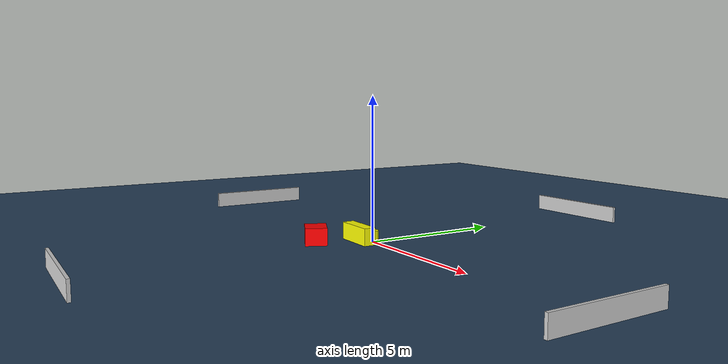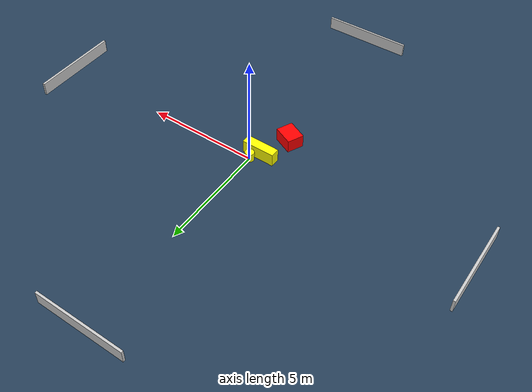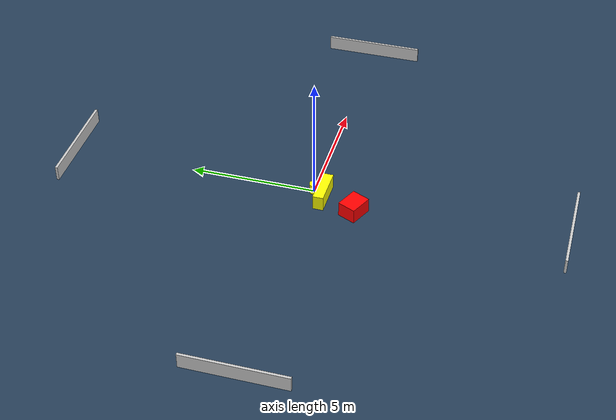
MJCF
<?xml version="1.0" ?>
<mujoco model="generated_environment">
  <option timestep="0.01" integrator="RK4" cone="elliptic"/>
  <default>
    <geom density="1"/>
  </default>
  <asset>
    <texture builtin="gradient" height="3072" name="skybox" rgb1="0.3 0.5 0.7" rgb2="0 0 0" type="skybox" width="512"/>
    <texture builtin="checker" height="300" name="groundplane" rgb1="0.2 0.3 0.4" rgb2="0.1 0.2 0.3" type="2d" width="300"/>
    <material name="groundplane" reflectance="0.2" texrepeat="5 5" texture="groundplane"/>
  </asset>
  <worldbody>
    <light dir="0 0 -1" directional="true" pos="0 0 1.5"/>
    <geom condim="3" friction="0.5 0.005 0.001" material="groundplane" name="floor" pos="0 0 0" size="0 0 0.05" type="plane"/>
    <body name="walls">
      <geom name="wall_1" condim="4" pos="-10.0 0.0 0.3" rgba="0.800000011920929 0.800000011920929 0.800000011920929 1.0" size="0.05 2.0 0.3" type="box"/>
      <geom name="wall_2" condim="4" pos="10.0 0.0 0.3" rgba="0.800000011920929 0.800000011920929 0.800000011920929 1.0" size="0.05 2.0 0.3" type="box"/>
      <geom name="wall_3" condim="4" pos="0.0 -10.0 0.3" rgba="0.800000011920929 0.800000011920929 0.800000011920929 1.0" size="2.0 0.05 0.3" type="box"/>
      <geom name="wall_4" condim="4" pos="0.0 10.0 0.3" rgba="0.800000011920929 0.800000011920929 0.800000011920929 1.0" size="2.0 0.05 0.3" type="box"/>
    </body>
    <body name="robot">
      <joint name="joint_x" type="slide" pos="0 0 0" axis="1 0 0"/>
      <joint name="joint_y" type="slide" pos="0 0 0" axis="0 1 0"/>
      <geom name="robot" type="cylinder" pos="0.0 0.0 0.2" size="0.2 0.2 0.0" mass="5.0" friction="1.0 0.005 0.0001" condim="4" rgba="1.0 1.0 0.0 1.0"/>
    </body>
    <body name="obstacle_1_movable">
      <geom name="obstacle_1_movable" condim="4" pos="-0.2583540189747724 -0.41459315289145404 0.3" euler="0 0 89.28546041036566" friction="0.0 0.005 0.001" rgba="1.0 1.0 0.0 1.0" size="0.20916747619727746 0.7412798966028391 0.3" type="box" mass="0.1"/>
      <joint type="free"/>
    </body>
    <body name="obstacle_2_static">
      <geom name="obstacle_2_static" condim="4" pos="-0.8317407303509002 -1.782544628308144 0.3" euler="0 0 245.20415771977943" friction="0.0 0.005 0.001" rgba="1.0 0.0 0.0 1.0" size="0.37314526095440825 0.45853321761327376 0.3" type="box"/>
    </body>
  </worldbody>
  <actuator>
    <motor name="actuator_x" joint="joint_x" gear="1" ctrlrange="-1 1"/>
    <motor name="actuator_y" joint="joint_y" gear="1" ctrlrange="-1 1"/>
  </actuator>
</mujoco>
